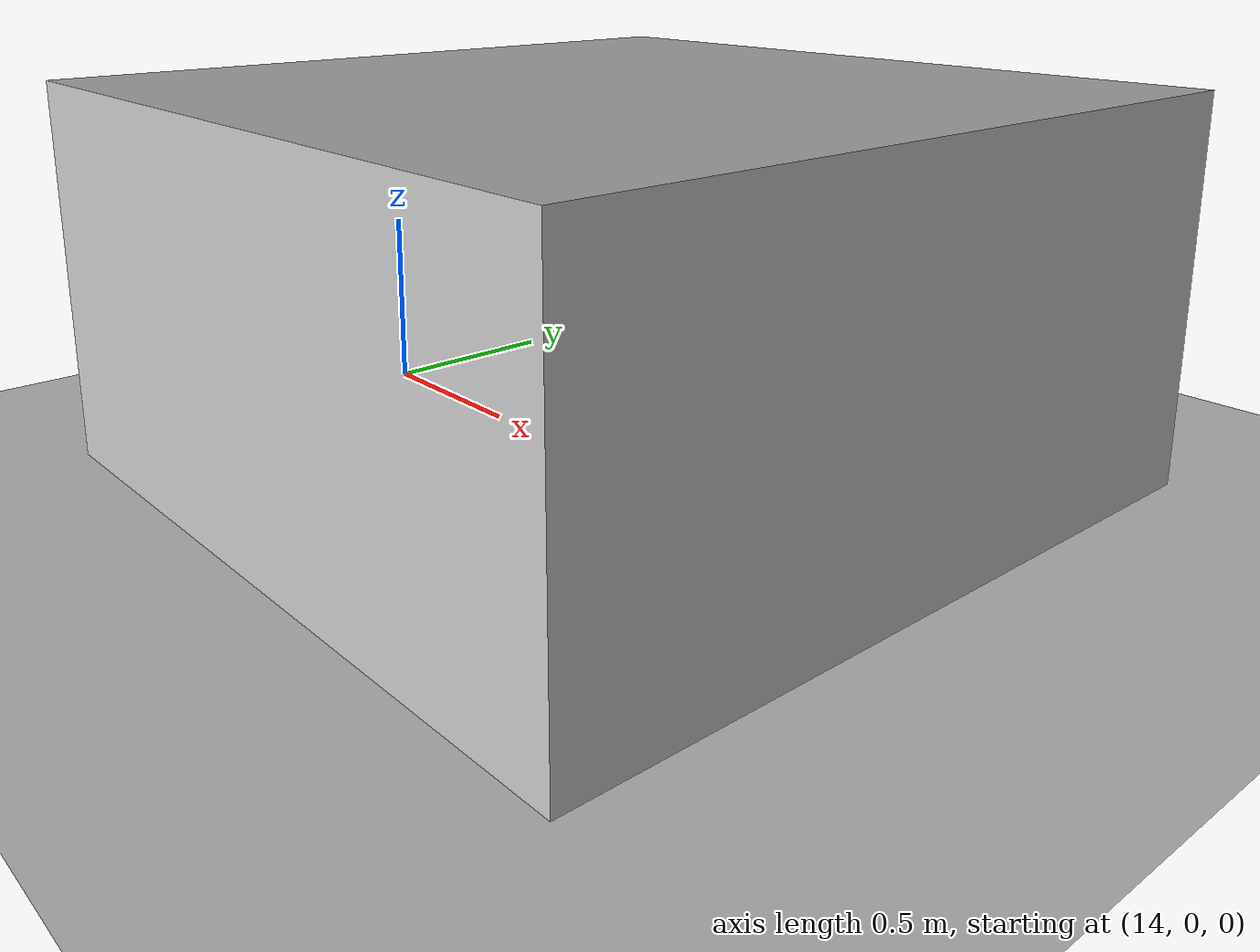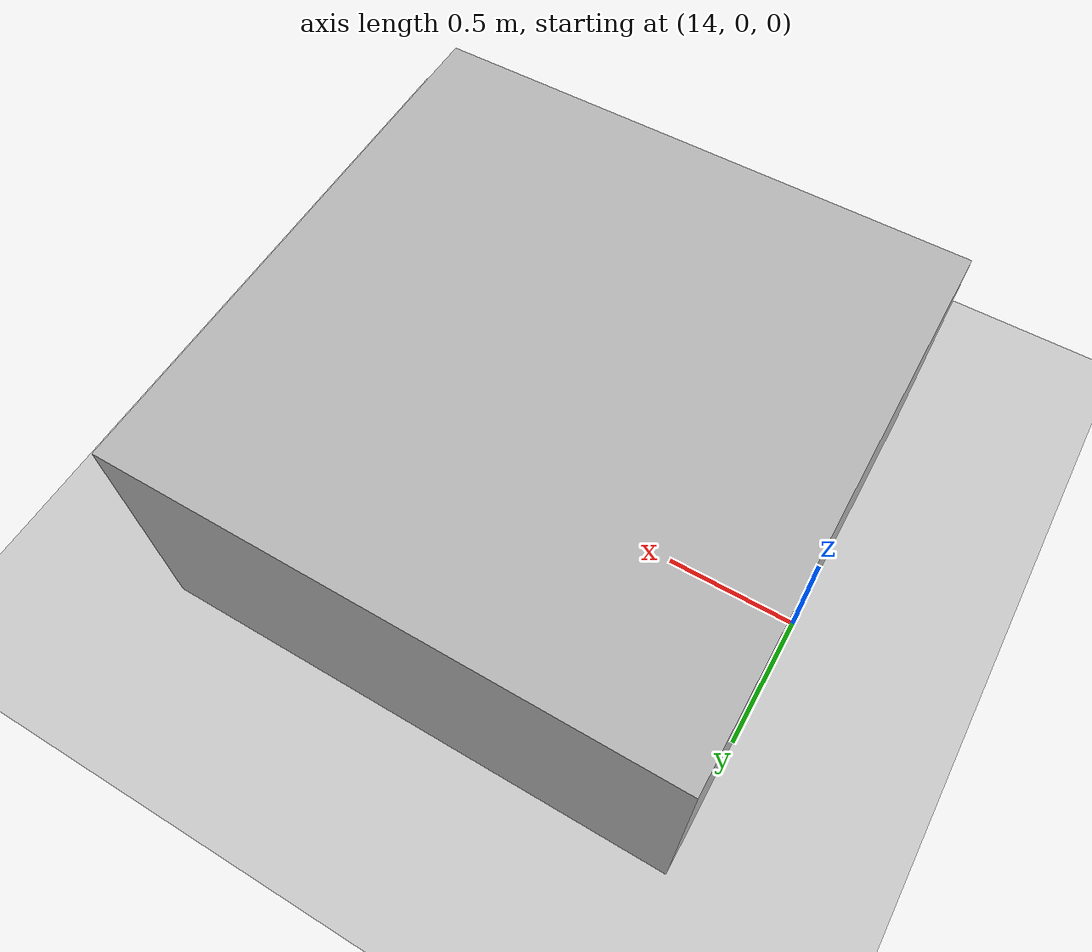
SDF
<?xml version="1.0" ?>
<sdf version="1.9">
  <world name="waypoint_obstacles">
    <gravity>0 0 -9.81</gravity>

    <light name="sun" type="directional">
      <pose>0 0 10 0 0 0</pose>
      <diffuse>1 1 1 1</diffuse>
      <direction>-0.5 0.5 -1</direction>
      <cast_shadows>true</cast_shadows>
    </light>

    <model name="ground_plane">
      <static>true</static>
      <link name="link">
        <collision name="collision">
          <geometry>
            <plane><normal>0 0 1</normal><size>1000 1000</size></plane>
          </geometry>
        </collision>
        <visual name="visual">
          <geometry>
            <plane><normal>0 0 1</normal><size>1000 1000</size></plane>
          </geometry>
        </visual>
      </link>
    </model>

    <!-- Simple obstacle box -->
    <model name="obstacle_box">
      <static>true</static>
      <pose>15 0 0.5 0 0 0</pose>
      <link name="link">
        <collision name="collision">
          <geometry><box><size>2 2 1</size></box></geometry>
        </collision>
        <visual name="visual">
          <geometry><box><size>2 2 1</size></box></geometry>
        </visual>
      </link>
    </model>
  </world>
</sdf>
